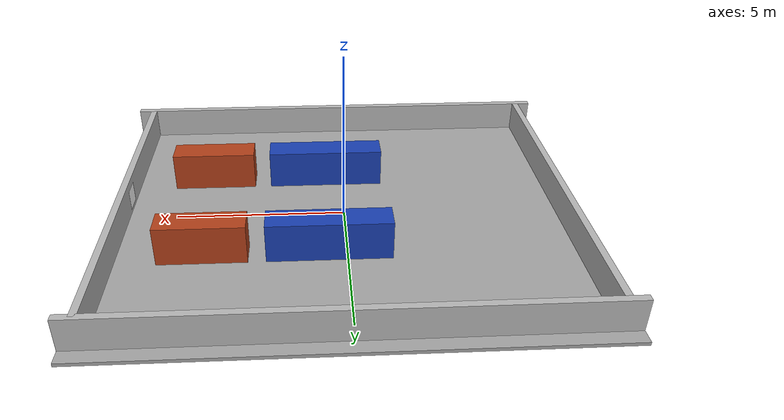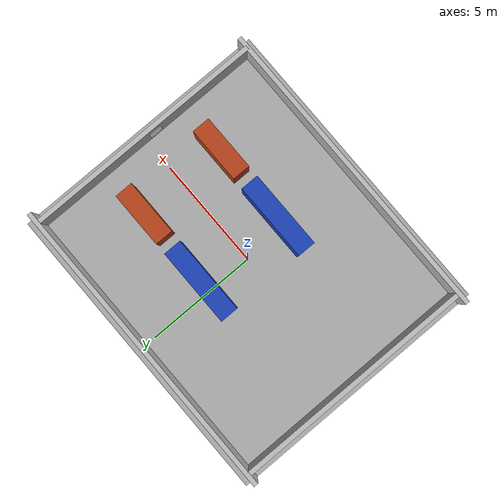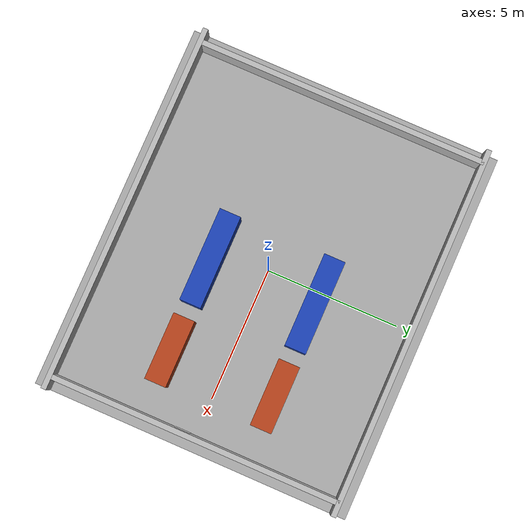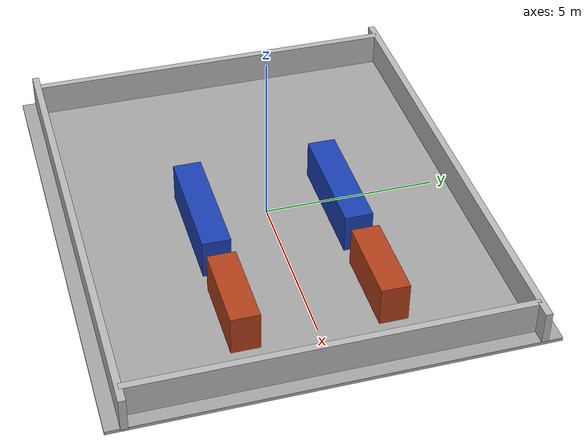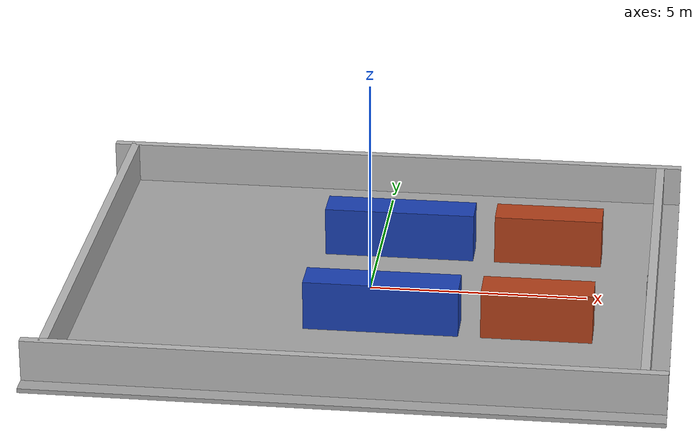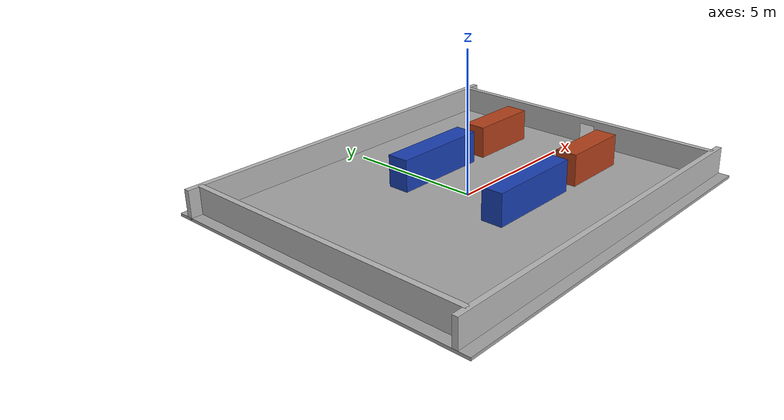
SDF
<?xml version="1.0" ?>
<sdf version="1.9">
  <world name="warehouse">

    <physics name="default_physics" type="ignored">
      <max_step_size>0.001</max_step_size>
      <real_time_factor>1.0</real_time_factor>
    </physics>

    <plugin
      filename="gz-sim-physics-system"
      name="gz::sim::systems::Physics"/>

    <plugin
      filename="gz-sim-user-commands-system"
      name="gz::sim::systems::UserCommands"/>

    <plugin
      filename="gz-sim-scene-broadcaster-system"
      name="gz::sim::systems::SceneBroadcaster"/>

    <plugin
      filename="gz-sim-sensors-system"
      name="gz::sim::systems::Sensors">
      <render_engine>ogre2</render_engine>
    </plugin>

    <plugin
      filename="gz-sim-imu-system"
      name="gz::sim::systems::Imu">
    </plugin>

    <scene>
      <ambient>0.8 0.8 0.8 1</ambient>
      <background>0.6 0.7 0.8 1</background>
      <shadows>true</shadows>
    </scene>

    <light type="directional" name="sun">
      <cast_shadows>true</cast_shadows>
      <pose>0 0 10 0 0 0</pose>
      <diffuse>0.9 0.9 0.9 1</diffuse>
      <specular>0.2 0.2 0.2 1</specular>
      <direction>-0.5 0.2 -0.9</direction>
    </light>

    <model name="warehouse_floor">
      <static>true</static>
      <link name="link">
        <collision name="collision">
          <geometry>
            <box>
              <size>14 12 0.1</size>
            </box>
          </geometry>
        </collision>

        <visual name="visual">
          <geometry>
            <box>
              <size>14 12 0.1</size>
            </box>
          </geometry>
          <material>
            <ambient>0.65 0.65 0.65 1</ambient>
            <diffuse>0.65 0.65 0.65 1</diffuse>
          </material>
        </visual>
      </link>
    </model>

    <!-- กำแพงด้านเหนือ -->
    <model name="north_wall">
      <static>true</static>
      <pose>0 5.5 0.5 0 0 0</pose>
      <link name="link">
        <collision name="collision">
          <geometry><box><size>14 0.2 1</size></box></geometry>
        </collision>
        <visual name="visual">
          <geometry><box><size>14 0.2 1</size></box></geometry>
        </visual>
      </link>
    </model>

    <!-- กำแพงด้านใต้ -->
    <model name="south_wall">
      <static>true</static>
      <pose>0 -5.5 0.5 0 0 0</pose>
      <link name="link">
        <collision name="collision">
          <geometry><box><size>14 0.2 1</size></box></geometry>
        </collision>
        <visual name="visual">
          <geometry><box><size>14 0.2 1</size></box></geometry>
        </visual>
      </link>
    </model>

    <!-- กำแพงด้านตะวันออก -->
    <model name="east_wall">
      <static>true</static>
      <pose>6.5 0 0.5 0 0 0</pose>
      <link name="link">
        <collision name="collision">
          <geometry><box><size>0.2 11 1</size></box></geometry>
        </collision>
        <visual name="visual">
          <geometry><box><size>0.2 11 1</size></box></geometry>
        </visual>
      </link>
    </model>

    <!-- กำแพงด้านตะวันตก -->
    <model name="west_wall">
      <static>true</static>
      <pose>-6.5 0 0.5 0 0 0</pose>
      <link name="link">
        <collision name="collision">
          <geometry><box><size>0.2 11 1</size></box></geometry>
        </collision>
        <visual name="visual">
          <geometry><box><size>0.2 11 1</size></box></geometry>
        </visual>
      </link>
    </model>

    <!-- ชั้นวางสินค้า -->
    <model name="shelf_1">
      <static>true</static>
      <pose>0.5 -2 0.6 0 0 0</pose>
      <link name="link">
        <collision name="collision">
          <geometry><box><size>3.5 0.8 1.2</size></box></geometry>
        </collision>
        <visual name="visual">
          <geometry><box><size>3.5 0.8 1.2</size></box></geometry>
          <material>
            <ambient>0.1 0.25 0.7 1</ambient>
            <diffuse>0.1 0.25 0.7 1</diffuse>
          </material>
        </visual>
      </link>
    </model>

    <model name="shelf_2">
      <static>true</static>
      <pose>0.5 2 0.6 0 0 0</pose>
      <link name="link">
        <collision name="collision">
          <geometry><box><size>3.5 0.8 1.2</size></box></geometry>
        </collision>
        <visual name="visual">
          <geometry><box><size>3.5 0.8 1.2</size></box></geometry>
          <material>
            <ambient>0.1 0.25 0.7 1</ambient>
            <diffuse>0.1 0.25 0.7 1</diffuse>
          </material>
        </visual>
      </link>
    </model>

    <model name="shelf_3">
      <static>true</static>
      <pose>4 -2 0.6 0 0 0</pose>
      <link name="link">
        <collision name="collision">
          <geometry><box><size>2.5 0.8 1.2</size></box></geometry>
        </collision>
        <visual name="visual">
          <geometry><box><size>2.5 0.8 1.2</size></box></geometry>
          <material>
            <ambient>0.7 0.25 0.1 1</ambient>
            <diffuse>0.7 0.25 0.1 1</diffuse>
          </material>
        </visual>
      </link>
    </model>

    <model name="shelf_4">
      <static>true</static>
      <pose>4 2 0.6 0 0 0</pose>
      <link name="link">
        <collision name="collision">
          <geometry><box><size>2.5 0.8 1.2</size></box></geometry>
        </collision>
        <visual name="visual">
          <geometry><box><size>2.5 0.8 1.2</size></box></geometry>
          <material>
            <ambient>0.7 0.25 0.1 1</ambient>
            <diffuse>0.7 0.25 0.1 1</diffuse>
          </material>
        </visual>
      </link>
    </model>
    <!-- ArUco station marker: dictionary 4X4_50, ID 0 -->
    <include>
      <uri>model://aruco_marker_0</uri>
      <name>aruco_marker_0</name>
      <pose>6.38 -0.50 0.50 0 0 0</pose>
    </include>
  </world>
</sdf>

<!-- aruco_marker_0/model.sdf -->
<sdf version="1.9">
  <model name="aruco_marker_0">
    <static>true</static>

    <link name="marker_link">
      <visual name="marker_visual">
        <!-- หมุนป้ายให้หันไปทางหุ่นยนต์ -->
        <pose>0 0 0 0 -1.570796 0</pose>

        <cast_shadows>false</cast_shadows>

        <geometry>
          <plane>
            <normal>0 0 1</normal>
            <size>0.60 0.60</size>
          </plane>
        </geometry>

        <material>
          <ambient>1 1 1 1</ambient>
          <diffuse>1 1 1 1</diffuse>
          <specular>0 0 0 1</specular>

          <pbr>
            <metal>
              <albedo_map>
                materials/textures/aruco_0.png
              </albedo_map>
              <metalness>0.0</metalness>
              <roughness>1.0</roughness>
            </metal>
          </pbr>
        </material>
      </visual>
    </link>
  </model>
</sdf>
